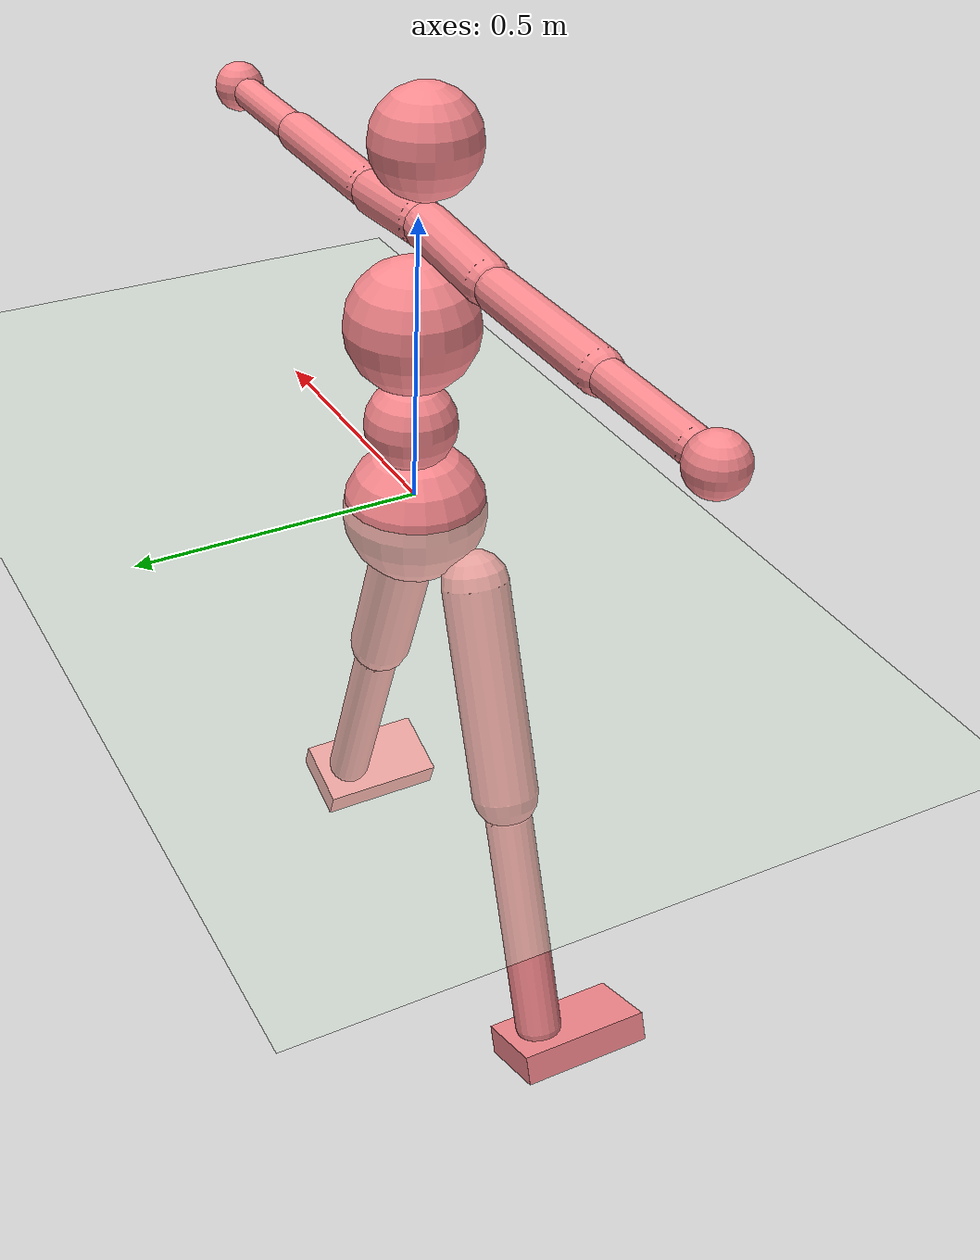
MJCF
<mujoco model="humanoid">
  <compiler angle="degree" inertiafromgeom="true" coordinate="global" />
  <include file="./common/materials.xml" />
    <visual>
    <headlight ambient=".4 .4 .4" diffuse=".8 .8 .8" specular="0.3 0.3 0.3" />
    <map znear=".01" />
    <quality shadowsize="2048" />
  </visual>
  <default>
    <joint damping="0.0" armature="0.01" stiffness="0.0" limited="true" />
    <geom conaffinity="7" condim="1" contype="7" margin="0.001" material="self" rgba=".98 .54 .56 1." />
  </default>
  <statistic extent="3" center="0 0 1" />
  <option timestep="0.00222222222" />
  <asset>
    <texture type="skybox" file="./common/sky1.png" gridsize="3 4" gridlayout=".U..LFRB.D.." width="8192" height="8192" />
    <texture builtin="flat" height="1278" mark="cross" markrgb="1 1 1" name="texgeom" random="0.01" rgb1=".8 .6 .4" rgb2=".8 .6 .4" type="cube" width="127" />
  </asset>
  <worldbody>
    <light cutoff="100" diffuse="1 1 1" dir="-0 0 -1.3" directional="true" exponent="1" pos="0 0 1.3" specular=".1 .1 .1" />
    <geom condim="3" friction="1. .1 .1" material="grid_new" name="floor" pos="0.0 0.0 0.0" rgba=".8 .9 .8 1" size="113.40860504128673 113.40860504128673 0.2268172100825735" type="plane" />
    <body name="root" user="0.0000 -0.0000 0.0000" pos="0.0 -0.0 0.0">
      <joint armature="0.0" limited="false" name="root" pos="0.0 -0.0 0.0" stiffness="0" type="free" />
      <geom pos="0.0 0.0 -0.027218065209908816" size="0.12474946554541541" type="sphere" />
      <body name="lhipjoint" user="0.0963 -0.0494 -0.0918" pos="0.0 -0.0 0.0">
        <body name="lfemur" user="0.2274 -0.0494 -0.4521" pos="0.10921248665475912 -0.056023850890395646 -0.10410909942790122">
          <joint axis="0.0000 -1.0000 0.0000" name="lfemur_z" pos="0.10921248665475912 -0.056023850890395646 -0.10410909942790122" range="-60.0000 70.0000" type="hinge" />
          <joint axis="-0.3420 -0.0000 0.9397" name="lfemur_y" pos="0.10921248665475912 -0.056023850890395646 -0.10410909942790122" range="-70.0000 70.0000" type="hinge" />
          <joint axis="0.9397 0.0000 0.3420" name="lfemur_x" pos="0.10921248665475912 -0.056023850890395646 -0.10410909942790122" range="-160.0000 20.0000" type="hinge" />
          <geom fromto="0.11692427179756662 -0.056023850890395646 -0.12542991717566312 0.25017938272107854 -0.056023850890395646 -0.49139948564389546" size="0.0589724746214691" type="capsule" />
          <body name="ltibia" user="0.3657 -0.0494 -0.8321" pos="0.25789116786388605 -0.056023850890395646 -0.5127203033916573">
            <joint axis="0.9397 0.0000 0.3420" name="knee" pos="0.25789116786388605 -0.056023850890395646 -0.5127203033916573" range="0.0000 170.0000" type="hinge" />
            <geom contype="1" conaffinity="1" fromto="0.26571636161173484 -0.056023850890395646 -0.5340411211394193 0.4070234834931781 -0.056023850890395646 -0.9223521848007851" size="0.04196118386527609" type="capsule" />
            <body name="lfoot" user="0.3731 -0.1606 -0.8523" pos="0.41473526863598564 -0.056023850890395646 -0.9436730025485469">
              <geom contype="1" conaffinity="1" pos="0.42119955912333895 -0.11227451899087387 -0.9573954437585426" size="0.06804516302477204 0.1213472073941768 0.027218065209908816" quat="0.9848 -0.0000 -0.1736 0.0000" type="box" />
              <site name="load_force" type="box" pos="0.3714 -0.0990 -0.8442" size="0.0700 0.1170 0.0340" quat="0.9848 -0.0000 -0.1736 0.0000" rgba="0.8 0.2 .2 .4" />
              <site name="load_touch" type="box" pos="0.3714 -0.0990 -0.8442" size="0.0700 0.1170 0.0340" quat="0.9848 -0.0000 -0.1736 0.0000" rgba="0.8 0.2 .2 .4" />

              <joint axis="0.9397 0.0000 0.3420" name="ankle" pos="0.41473526863598564 -0.056023850890395646 -0.9436730025485469" range="-45.0000 90.0000" type="hinge" />
            </body>
          </body>
        </body>
      </body>
      <body name="rhipjoint" user="-0.0963 -0.0494 -0.0918" pos="-0.0 -0.0 0.0">
        <body name="rfemur" user="-0.2274 -0.0494 -0.4521" pos="-0.10921248665475912 -0.056023850890395646 -0.10410909942790122">
          <joint axis="0.0000 -1.0000 -0.0000" name="rfemur_z" pos="-0.10921248665475912 -0.056023850890395646 -0.10410909942790122" range="-70.0000 60.0000" type="hinge" />
          <joint axis="0.3420 -0.0000 0.9397" name="rfemur_y" pos="-0.10921248665475912 -0.056023850890395646 -0.10410909942790122" range="-70.0000 70.0000" type="hinge" />
          <joint axis="0.9397 0.0000 -0.3420" name="rfemur_x" pos="-0.10921248665475912 -0.056023850890395646 -0.10410909942790122" range="-160.0000 20.0000" type="hinge" />
          <geom fromto="-0.11692427179756662 -0.056023850890395646 -0.12542991717566312 -0.25017938272107854 -0.056023850890395646 -0.49139948564389546" size="0.0589724746214691" type="capsule" />
          <body name="rtibia" user="-0.3657 -0.0494 -0.8321" pos="-0.25789116786388605 -0.056023850890395646 -0.5127203033916573">
            <joint axis="0.9397 0.0000 -0.3420" name="rtibia_x" pos="-0.25789116786388605 -0.056023850890395646 -0.5127203033916573" range="0.0000 170.0000" type="hinge" />
            <geom contype="2" conaffinity="2" fromto="-0.26571636161173484 -0.056023850890395646 -0.5340411211394193 -0.4070234834931781 -0.056023850890395646 -0.9223521848007851" size="0.04196118386527609" type="capsule" />
            <body name="rfoot" user="-0.3731 -0.1606 -0.8523" pos="-0.41473526863598564 -0.056023850890395646 -0.9436730025485469">
              <geom contype="2" conaffinity="2" pos="-0.42119955912333895 -0.11227451899087387 -0.9573954437585426" size="0.06804516302477204 0.1213472073941768 0.027218065209908816" quat="0.9848 -0.0000 0.1736 -0.0000" type="box" />
              <joint axis="0.3420 -0.0000 0.9397" name="rfoot_z" pos="-0.41473526863598564 -0.056023850890395646 -0.9436730025485469" range="-20.0000 70.0000" type="hinge" />
              <joint axis="0.0000 -1.0000 0.0000" name="rfoot_y" pos="-0.41473526863598564 -0.056023850890395646 -0.9436730025485469" range="-45.0000 45.0000" type="hinge" />
              <joint axis="0.9397 -0.0000 -0.3420" name="rfoot_x" pos="-0.41473526863598564 -0.056023850890395646 -0.9436730025485469" range="-45.0000 90.0000" type="hinge" />
            </body>
          </body>
        </body>
      </body>
      <body name="lowerback" user="0.0006 0.0081 0.1132" pos="0.0 -0.0 0.0">
        <body name="upperback" user="0.0011 0.0071 0.2268" pos="0.0006804516302477203 0.009186097008344225 0.1283785409067366">
          <geom pos="0.0006804516302477203 0.009186097008344225 0.13971940141086525" size="0.07938602352890073" type="sphere" />
          <joint axis="0.0000 -1.0000 0.0000" name="upperback_z" pos="0.0006804516302477203 0.009186097008344225 0.1283785409067366" range="-30.0000 30.0000" type="hinge" />
          <joint axis="0.0000 -0.0000 1.0000" name="upperback_y" pos="0.0006804516302477203 0.009186097008344225 0.1283785409067366" range="-30.0000 30.0000" type="hinge" />
          <joint axis="1.0000 0.0000 0.0000" name="upperback_x" pos="0.0006804516302477203 0.009186097008344225 0.1283785409067366" range="-20.0000 45.0000" type="hinge" />
          <body name="thorax" user="0.0010 0.0024 0.3407" pos="0.001247494655454154 0.00805201095793136 0.25721071623363834">
            <geom pos="0.001247494655454154 0.00805201095793136 0.3184513629559331" size="0.11340860504128675" type="sphere" />
            <body name="lowerneck" user="-0.0023 -0.0083 0.4312" pos="0.0011340860504128673 0.0027218065209908813 0.3863831173756639">
              <geom pos="-0.002608397915949595 -0.009412914218426799 0.620571886785921" size="0.09072688403302939" type="sphere" />
              <joint axis="0.0000 -1.0000 0.0000" name="lowerneck_z" pos="0.0011340860504128673 0.0027218065209908813 0.3863831173756639" range="-30.0000 30.0000" type="hinge" />
              <joint axis="0.0000 -0.0000 1.0000" name="lowerneck_y" pos="0.0011340860504128673 0.0027218065209908813 0.3863831173756639" range="-30.0000 30.0000" type="hinge" />
              <joint axis="1.0000 0.0000 0.0000" name="lowerneck_x" pos="0.0011340860504128673 0.0027218065209908813 0.3863831173756639" range="-20.0000 45.0000" type="hinge" />
              <body name="upperneck" user="-0.0013 -0.0038 0.5212" pos="-0.002608397915949595 -0.009412914218426799 0.48901790493802844">
                <body name="head" user="-0.0006 -0.0008 0.6176" pos="-0.0014743118655367274 -0.004309526991568896 0.5910856494751865">
                  <camera mode="fixed" xyaxes="-1 0 0 0 0 1" />
                </body>
              </body>
              <body name="lclavicle" user="0.1790 -0.0149 0.4121" pos="-0.002608397915949595 -0.009412914218426799 0.48901790493802844">
                <geom fromto="0.011454269109169959 -0.009979957243633233 0.4875435930724917 0.1889387359987837 -0.01633083912594529 0.46883117324067936" size="0.03855892571403749" type="capsule" />
                <joint axis="0.0000 -1.0000 0.0000" name="lclavicle_z" pos="0.0011340860504128673 0.0027218065209908813 0.3863831173756639" range="0.0000 20.0000" type="hinge" />
                <joint axis="0.0000 -0.0000 1.0000" name="lclavicle_y" pos="0.0011340860504128673 0.0027218065209908813 0.3863831173756639" range="-20.0000 10.0000" type="hinge" />
                <body name="lhumerus" user="0.4599 -0.0149 0.4121" pos="0.20300140302390324 -0.016897882151151723 0.46735686137514265">
                  <joint axis="-0.0000 0.8660 -0.5000" name="lhumerus_z" pos="0.20300140302390324 -0.016897882151151723 0.46735686137514265" range="-90.0000 90.0000" type="hinge" />
                  <joint axis="-1.0000 -0.0000 -0.0000" name="lhumerus_y" pos="0.20300140302390324 -0.016897882151151723 0.46735686137514265" range="-90.0000 90.0000" type="hinge" />
                  <joint axis="0.0000 -0.5000 -0.8660" name="lhumerus_x" pos="0.20300140302390324 -0.016897882151151723 0.46735686137514265" range="-60.0000 90.0000" type="hinge" />
                  <geom fromto="0.22284790890612843 -0.016897882151151723 0.46735686137514265 0.5017196687026525 -0.016897882151151723 0.46735686137514265" size="0.035156667562798886" type="capsule" />
                  <body name="lradius" user="0.6374 -0.0149 0.4121" pos="0.5215661745848776 -0.016897882151151723 0.46735686137514265">
                    <geom fromto="0.5215661745848776 -0.016897882151151723 0.46735686137514265 0.7228664485331616 -0.016897882151151723 0.46735686137514265" size="0.028352151260321687" type="capsule" />
                    <joint axis="0.0000 -0.5000 -0.8660" name="lradius_x" pos="0.5215661745848776 -0.016897882151151723 0.46735686137514265" range="-10.0000 170.0000" type="hinge" />
                    <body name="lwrist" user="0.7261 -0.0149 0.4121" pos="0.7228664485331616 -0.016897882151151723 0.46735686137514265">
                      <geom pos="0.7727662347513278 -0.016897882151151723 0.46735686137514265" size="0.045363442016514696" type="sphere" />
                    </body>
                  </body>
                </body>
              </body>
              <body name="rclavicle" user="-0.1790 -0.0149 0.4121" pos="0.002608397915949595 -0.009412914218426799 0.48901790493802844">
                <geom fromto="-0.011454269109169959 -0.009979957243633233 0.4875435930724917 -0.1889387359987837 -0.01633083912594529 0.46883117324067936" size="0.03855892571403749" type="capsule" />
                <joint axis="0.0000 -1.0000 0.0000" name="rclavicle_z" pos="-0.0011340860504128673 0.0027218065209908813 0.3863831173756639" range="-20.0000 0.0000" type="hinge" />
                <joint axis="0.0000 -0.0000 1.0000" name="rclavicle_y" pos="-0.0011340860504128673 0.0027218065209908813 0.3863831173756639" range="-10.0000 20.0000" type="hinge" />
                <body name="rhumerus" user="-0.4599 -0.0149 0.4121" pos="-0.20300140302390324 -0.016897882151151723 0.46735686137514265">
                  <joint axis="0.0000 0.8660 -0.5000" name="rhumerus_z" pos="-0.20300140302390324 -0.016897882151151723 0.46735686137514265" range="-90.0000 90.0000" type="hinge" />
                  <joint axis="1.0000 -0.0000 -0.0000" name="rhumerus_y" pos="-0.20300140302390324 -0.016897882151151723 0.46735686137514265" range="-90.0000 90.0000" type="hinge" />
                  <joint axis="0.0000 0.5000 0.8660" name="rhumerus_x" pos="-0.20300140302390324 -0.016897882151151723 0.46735686137514265" range="-90.0000 60.0000" type="hinge" />
                  <geom fromto="-0.22284790890612843 -0.016897882151151723 0.46735686137514265 -0.5017196687026525 -0.016897882151151723 0.46735686137514265" size="0.035156667562798886" type="capsule" />
                  <body name="rradius" user="-0.6374 -0.0149 0.4121" pos="-0.5215661745848776 -0.016897882151151723 0.46735686137514265">
                    <geom fromto="-0.5215661745848776 -0.016897882151151723 0.46735686137514265 -0.7228664485331616 -0.016897882151151723 0.46735686137514265" size="0.028352151260321687" type="capsule" />
                    <joint axis="0.0000 0.5000 0.8660" name="rradius_x" pos="-0.5215661745848776 -0.016897882151151723 0.46735686137514265" range="-10.0000 170.0000" type="hinge" />
                    <body name="rwrist" user="-0.7261 -0.0149 0.4121" pos="-0.7228664485331616 -0.016897882151151723 0.46735686137514265">
                      <geom pos="-0.7727662347513278 -0.016897882151151723 0.46735686137514265" size="0.045363442016514696" type="sphere" />
                    </body>
                  </body>
                </body>
              </body>
            </body>
          </body>
        </body>
      </body>
    </body>
  </worldbody>
  <sensor>
    <force name="lforce" site="load_force" />
  </sensor>
  <sensor>
    <touch name="ltouch" site="load_touch" />
  </sensor>
  <actuator>
    <motor gear="1" joint="lfemur_z" name="lfemur_z" />
    <motor gear="1" joint="lfemur_y" name="lfemur_y" />
    <motor gear="1" joint="lfemur_x" name="lfemur_x" />
    <motor gear="1" joint="knee" name="knee" />

    <motor gear="1" joint="ankle" name="ankle" />
    <motor gear="1" joint="rfemur_z" name="rfemur_z" />
    <motor gear="1" joint="rfemur_y" name="rfemur_y" />
    <motor gear="1" joint="rfemur_x" name="rfemur_x" />
    <motor gear="1" joint="rtibia_x" name="rtibia_x" />
    <motor gear="1" joint="rfoot_z" name="rfoot_z" />
    <motor gear="1" joint="rfoot_y" name="rfoot_y" />
    <motor gear="1" joint="rfoot_x" name="rfoot_x" />
    <motor gear="1" joint="upperback_z" name="upperback_z" />
    <motor gear="1" joint="upperback_y" name="upperback_y" />
    <motor gear="1" joint="upperback_x" name="upperback_x" />
    <motor gear="1" joint="lowerneck_z" name="lowerneck_z" />
    <motor gear="1" joint="lowerneck_y" name="lowerneck_y" />
    <motor gear="1" joint="lowerneck_x" name="lowerneck_x" />
    <motor gear="1" joint="lclavicle_z" name="lclavicle_z" />
    <motor gear="1" joint="lclavicle_y" name="lclavicle_y" />
    <motor gear="1" joint="lhumerus_z" name="lhumerus_z" />
    <motor gear="1" joint="lhumerus_y" name="lhumerus_y" />
    <motor gear="1" joint="lhumerus_x" name="lhumerus_x" />
    <motor gear="1" joint="lradius_x" name="lradius_x" />
    <motor gear="1" joint="rclavicle_z" name="rclavicle_z" />
    <motor gear="1" joint="rclavicle_y" name="rclavicle_y" />
    <motor gear="1" joint="rhumerus_z" name="rhumerus_z" />
    <motor gear="1" joint="rhumerus_y" name="rhumerus_y" />
    <motor gear="1" joint="rhumerus_x" name="rhumerus_x" />
    <motor gear="1" joint="rradius_x" name="rradius_x" />
  </actuator>
</mujoco>

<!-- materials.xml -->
<!--
Common textures, colors and materials to be used throughout this suite. Some
materials such as xxx_highlight are activated on occurence of certain events,
for example receiving a positive reward.
-->
<mujoco>
  <asset>
    <texture name="grid" type="2d" builtin="checker" rgb1=".1 .2 .3" rgb2=".2 .3 .4" width="300" height="300" mark="edge" markrgb=".2 .3 .4"/>
    <material name="grid" texture="grid" texrepeat="1 1" texuniform="true" reflectance=".2"/>
    <texture builtin="checker" height="100" name="texplane" rgb1="0 0 0" rgb2=".8 .8 .8" type="2d" width="100"/>
    <texture name="grass" file="./common/grass.png" type="2d"/>

    <texture name="grid_new" type="2d" builtin="checker" rgb1=".1 .3 .2" rgb2=".2 .4 .3" width="1000" height="1000" mark="none" markrgb=".8 .6 .4"/>
    <material name="grid_new" texture="grid_new" texrepeat="0.2 0.2" texuniform="true" reflectance=".2"/>
    <material name="MatPlane" reflectance="0.5" shininess="1" specular="1" texrepeat="60 60" texture="texplane"/>
    <material name="GrassPlane" reflectance="0.0" shininess="1" specular="1" texrepeat="400 400" texture="grass"/>
    <material name="self" rgba=".7 .5 .3 1"/>
    <material name="self_default" rgba=".7 .5 .3 1"/>
    <material name="self_highlight" rgba="0 .5 .3 1"/>
    <material name="effector" rgba=".7 .4 .2 1"/>
    <material name="effector_default" rgba=".7 .4 .2 1"/>
    <material name="effector_highlight" rgba="0 .5 .3 1"/>
    <material name="decoration" rgba=".3 .5 .7 1"/>
    <material name="eye" rgba="0 .2 1 1"/>
    <material name="target" rgba=".6 .3 .3 1"/>
    <material name="target_default" rgba=".6 .3 .3 1"/>
    <material name="target_highlight" rgba=".6 .3 .3 .4"/>
    <material name="expert" rgba=".6 .3 .3 .4"/>
  </asset>
</mujoco>
